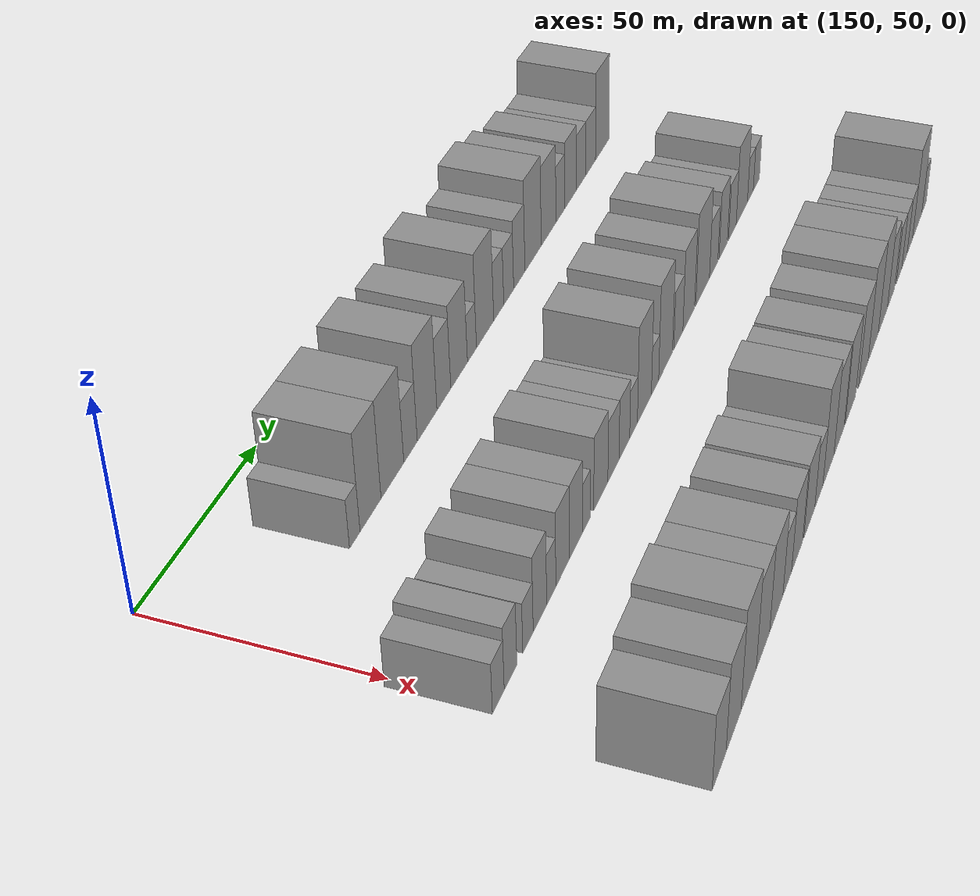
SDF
<sdf version="1.6">
 <world name="default">
  <model name="building_484">
   <static>1</static>
   <pose>170.0000 80.8045 0 0.000000 0.000000 0.000000</pose>
   <link name="link">
    <pose>0 0 6.00 0 0 0</pose>
    <collision name="collision"><geometry><box><size>20.0000 4.8670 12.0000</size></box></geometry></collision>
    <visual name="visual">
     <cast_shadows>0</cast_shadows>
     <geometry><box><size>20.0000 4.8670 12.0000</size></box></geometry>
     <material>
      <script>
       <uri>model://grey_wall/materials/scripts</uri>
       <uri>model://grey_wall/materials/textures</uri>
       <name>vrc/grey_wall</name>
      </script>
     </material>
    </visual>
   </link>
  </model>
  <model name="building_485">
   <static>1</static>
   <pose>170.0000 88.2387 0 0.000000 0.000000 0.000000</pose>
   <link name="link">
    <pose>0 0 12.00 0 0 0</pose>
    <collision name="collision"><geometry><box><size>20.0000 10.0013 24.0000</size></box></geometry></collision>
    <visual name="visual">
     <cast_shadows>0</cast_shadows>
     <geometry><box><size>20.0000 10.0013 24.0000</size></box></geometry>
     <material>
      <script>
       <uri>model://grey_wall/materials/scripts</uri>
       <uri>model://grey_wall/materials/textures</uri>
       <name>vrc/grey_wall</name>
      </script>
     </material>
    </visual>
   </link>
  </model>
  <model name="building_486">
   <static>1</static>
   <pose>170.0000 98.8931 0 0.000000 0.000000 0.000000</pose>
   <link name="link">
    <pose>0 0 12.00 0 0 0</pose>
    <collision name="collision"><geometry><box><size>20.0000 11.3076 24.0000</size></box></geometry></collision>
    <visual name="visual">
     <cast_shadows>0</cast_shadows>
     <geometry><box><size>20.0000 11.3076 24.0000</size></box></geometry>
     <material>
      <script>
       <uri>model://grey_wall/materials/scripts</uri>
       <uri>model://grey_wall/materials/textures</uri>
       <name>vrc/grey_wall</name>
      </script>
     </material>
    </visual>
   </link>
  </model>
  <model name="building_487">
   <static>1</static>
   <pose>170.0000 108.0232 0 0.000000 0.000000 0.000000</pose>
   <link name="link">
    <pose>0 0 7.50 0 0 0</pose>
    <collision name="collision"><geometry><box><size>20.0000 6.9526 15.0000</size></box></geometry></collision>
    <visual name="visual">
     <cast_shadows>0</cast_shadows>
     <geometry><box><size>20.0000 6.9526 15.0000</size></box></geometry>
     <material>
      <script>
       <uri>model://grey_wall/materials/scripts</uri>
       <uri>model://grey_wall/materials/textures</uri>
       <name>vrc/grey_wall</name>
      </script>
     </material>
    </visual>
   </link>
  </model>
  <model name="building_488">
   <static>1</static>
   <pose>170.0000 116.7342 0 0.000000 0.000000 0.000000</pose>
   <link name="link">
    <pose>0 0 12.00 0 0 0</pose>
    <collision name="collision"><geometry><box><size>20.0000 10.4694 24.0000</size></box></geometry></collision>
    <visual name="visual">
     <cast_shadows>0</cast_shadows>
     <geometry><box><size>20.0000 10.4694 24.0000</size></box></geometry>
     <material>
      <script>
       <uri>model://grey_wall/materials/scripts</uri>
       <uri>model://grey_wall/materials/textures</uri>
       <name>vrc/grey_wall</name>
      </script>
     </material>
    </visual>
   </link>
  </model>
  <model name="building_489">
   <static>1</static>
   <pose>170.0000 125.7995 0 0.000000 0.000000 0.000000</pose>
   <link name="link">
    <pose>0 0 9.00 0 0 0</pose>
    <collision name="collision"><geometry><box><size>20.0000 7.6612 18.0000</size></box></geometry></collision>
    <visual name="visual">
     <cast_shadows>0</cast_shadows>
     <geometry><box><size>20.0000 7.6612 18.0000</size></box></geometry>
     <material>
      <script>
       <uri>model://grey_wall/materials/scripts</uri>
       <uri>model://grey_wall/materials/textures</uri>
       <name>vrc/grey_wall</name>
      </script>
     </material>
    </visual>
   </link>
  </model>
  <model name="building_490">
   <static>1</static>
   <pose>170.0000 134.3663 0 0.000000 0.000000 0.000000</pose>
   <link name="link">
    <pose>0 0 10.50 0 0 0</pose>
    <collision name="collision"><geometry><box><size>20.0000 9.4724 21.0000</size></box></geometry></collision>
    <visual name="visual">
     <cast_shadows>0</cast_shadows>
     <geometry><box><size>20.0000 9.4724 21.0000</size></box></geometry>
     <material>
      <script>
       <uri>model://grey_wall/materials/scripts</uri>
       <uri>model://grey_wall/materials/textures</uri>
       <name>vrc/grey_wall</name>
      </script>
     </material>
    </visual>
   </link>
  </model>
  <model name="building_491">
   <static>1</static>
   <pose>170.0000 141.7454 0 0.000000 0.000000 0.000000</pose>
   <link name="link">
    <pose>0 0 6.00 0 0 0</pose>
    <collision name="collision"><geometry><box><size>20.0000 5.2858 12.0000</size></box></geometry></collision>
    <visual name="visual">
     <cast_shadows>0</cast_shadows>
     <geometry><box><size>20.0000 5.2858 12.0000</size></box></geometry>
     <material>
      <script>
       <uri>model://grey_wall/materials/scripts</uri>
       <uri>model://grey_wall/materials/textures</uri>
       <name>vrc/grey_wall</name>
      </script>
     </material>
    </visual>
   </link>
  </model>
  <model name="building_492">
   <static>1</static>
   <pose>170.0000 149.5778 0 0.000000 0.000000 0.000000</pose>
   <link name="link">
    <pose>0 0 12.00 0 0 0</pose>
    <collision name="collision"><geometry><box><size>20.0000 10.3790 24.0000</size></box></geometry></collision>
    <visual name="visual">
     <cast_shadows>0</cast_shadows>
     <geometry><box><size>20.0000 10.3790 24.0000</size></box></geometry>
     <material>
      <script>
       <uri>model://grey_wall/materials/scripts</uri>
       <uri>model://grey_wall/materials/textures</uri>
       <name>vrc/grey_wall</name>
      </script>
     </material>
    </visual>
   </link>
  </model>
  <model name="building_493">
   <static>1</static>
   <pose>170.0000 157.8700 0 0.000000 0.000000 0.000000</pose>
   <link name="link">
    <pose>0 0 7.50 0 0 0</pose>
    <collision name="collision"><geometry><box><size>20.0000 6.2055 15.0000</size></box></geometry></collision>
    <visual name="visual">
     <cast_shadows>0</cast_shadows>
     <geometry><box><size>20.0000 6.2055 15.0000</size></box></geometry>
     <material>
      <script>
       <uri>model://grey_wall/materials/scripts</uri>
       <uri>model://grey_wall/materials/textures</uri>
       <name>vrc/grey_wall</name>
      </script>
     </material>
    </visual>
   </link>
  </model>
  <model name="building_494">
   <static>1</static>
   <pose>170.0000 164.1206 0 0.000000 0.000000 0.000000</pose>
   <link name="link">
    <pose>0 0 7.50 0 0 0</pose>
    <collision name="collision"><geometry><box><size>20.0000 6.2956 15.0000</size></box></geometry></collision>
    <visual name="visual">
     <cast_shadows>0</cast_shadows>
     <geometry><box><size>20.0000 6.2956 15.0000</size></box></geometry>
     <material>
      <script>
       <uri>model://grey_wall/materials/scripts</uri>
       <uri>model://grey_wall/materials/textures</uri>
       <name>vrc/grey_wall</name>
      </script>
     </material>
    </visual>
   </link>
  </model>
  <model name="building_495">
   <static>1</static>
   <pose>170.0000 170.9346 0 0.000000 0.000000 0.000000</pose>
   <link name="link">
    <pose>0 0 9.00 0 0 0</pose>
    <collision name="collision"><geometry><box><size>20.0000 7.3326 18.0000</size></box></geometry></collision>
    <visual name="visual">
     <cast_shadows>0</cast_shadows>
     <geometry><box><size>20.0000 7.3326 18.0000</size></box></geometry>
     <material>
      <script>
       <uri>model://grey_wall/materials/scripts</uri>
       <uri>model://grey_wall/materials/textures</uri>
       <name>vrc/grey_wall</name>
      </script>
     </material>
    </visual>
   </link>
  </model>
  <model name="building_496">
   <static>1</static>
   <pose>170.0000 180.0778 0 0.000000 0.000000 0.000000</pose>
   <link name="link">
    <pose>0 0 12.00 0 0 0</pose>
    <collision name="collision"><geometry><box><size>20.0000 10.9537 24.0000</size></box></geometry></collision>
    <visual name="visual">
     <cast_shadows>0</cast_shadows>
     <geometry><box><size>20.0000 10.9537 24.0000</size></box></geometry>
     <material>
      <script>
       <uri>model://grey_wall/materials/scripts</uri>
       <uri>model://grey_wall/materials/textures</uri>
       <name>vrc/grey_wall</name>
      </script>
     </material>
    </visual>
   </link>
  </model>
  <model name="building_497">
   <static>1</static>
   <pose>170.0000 190.6676 0 0.000000 0.000000 0.000000</pose>
   <link name="link">
    <pose>0 0 10.50 0 0 0</pose>
    <collision name="collision"><geometry><box><size>20.0000 10.2257 21.0000</size></box></geometry></collision>
    <visual name="visual">
     <cast_shadows>0</cast_shadows>
     <geometry><box><size>20.0000 10.2257 21.0000</size></box></geometry>
     <material>
      <script>
       <uri>model://grey_wall/materials/scripts</uri>
       <uri>model://grey_wall/materials/textures</uri>
       <name>vrc/grey_wall</name>
      </script>
     </material>
    </visual>
   </link>
  </model>
  <model name="building_498">
   <static>1</static>
   <pose>170.0000 198.8834 0 0.000000 0.000000 0.000000</pose>
   <link name="link">
    <pose>0 0 7.50 0 0 0</pose>
    <collision name="collision"><geometry><box><size>20.0000 6.2059 15.0000</size></box></geometry></collision>
    <visual name="visual">
     <cast_shadows>0</cast_shadows>
     <geometry><box><size>20.0000 6.2059 15.0000</size></box></geometry>
     <material>
      <script>
       <uri>model://grey_wall/materials/scripts</uri>
       <uri>model://grey_wall/materials/textures</uri>
       <name>vrc/grey_wall</name>
      </script>
     </material>
    </visual>
   </link>
  </model>
  <model name="building_499">
   <static>1</static>
   <pose>170.0000 206.3096 0 0.000000 0.000000 0.000000</pose>
   <link name="link">
    <pose>0 0 9.00 0 0 0</pose>
    <collision name="collision"><geometry><box><size>20.0000 8.6467 18.0000</size></box></geometry></collision>
    <visual name="visual">
     <cast_shadows>0</cast_shadows>
     <geometry><box><size>20.0000 8.6467 18.0000</size></box></geometry>
     <material>
      <script>
       <uri>model://grey_wall/materials/scripts</uri>
       <uri>model://grey_wall/materials/textures</uri>
       <name>vrc/grey_wall</name>
      </script>
     </material>
    </visual>
   </link>
  </model>
  <model name="building_500">
   <static>1</static>
   <pose>170.0000 214.1640 0 0.000000 0.000000 0.000000</pose>
   <link name="link">
    <pose>0 0 7.50 0 0 0</pose>
    <collision name="collision"><geometry><box><size>20.0000 7.0620 15.0000</size></box></geometry></collision>
    <visual name="visual">
     <cast_shadows>0</cast_shadows>
     <geometry><box><size>20.0000 7.0620 15.0000</size></box></geometry>
     <material>
      <script>
       <uri>model://grey_wall/materials/scripts</uri>
       <uri>model://grey_wall/materials/textures</uri>
       <name>vrc/grey_wall</name>
      </script>
     </material>
    </visual>
   </link>
  </model>
  <model name="building_501">
   <static>1</static>
   <pose>170.0000 221.3366 0 0.000000 0.000000 0.000000</pose>
   <link name="link">
    <pose>0 0 7.50 0 0 0</pose>
    <collision name="collision"><geometry><box><size>20.0000 7.2833 15.0000</size></box></geometry></collision>
    <visual name="visual">
     <cast_shadows>0</cast_shadows>
     <geometry><box><size>20.0000 7.2833 15.0000</size></box></geometry>
     <material>
      <script>
       <uri>model://grey_wall/materials/scripts</uri>
       <uri>model://grey_wall/materials/textures</uri>
       <name>vrc/grey_wall</name>
      </script>
     </material>
    </visual>
   </link>
  </model>
  <model name="building_502">
   <static>1</static>
   <pose>170.0000 230.2449 0 0.000000 0.000000 0.000000</pose>
   <link name="link">
    <pose>0 0 12.00 0 0 0</pose>
    <collision name="collision"><geometry><box><size>20.0000 10.5332 24.0000</size></box></geometry></collision>
    <visual name="visual">
     <cast_shadows>0</cast_shadows>
     <geometry><box><size>20.0000 10.5332 24.0000</size></box></geometry>
     <material>
      <script>
       <uri>model://grey_wall/materials/scripts</uri>
       <uri>model://grey_wall/materials/textures</uri>
       <name>vrc/grey_wall</name>
      </script>
     </material>
    </visual>
   </link>
  </model>
  <model name="building_623">
   <static>1</static>
   <pose>210.0000 51.0926 0 0.000000 0.000000 0.000000</pose>
   <link name="link">
    <pose>0 0 6.00 0 0 0</pose>
    <collision name="collision"><geometry><box><size>20.0000 5.7637 12.0000</size></box></geometry></collision>
    <visual name="visual">
     <cast_shadows>0</cast_shadows>
     <geometry><box><size>20.0000 5.7637 12.0000</size></box></geometry>
     <material>
      <script>
       <uri>model://grey_wall/materials/scripts</uri>
       <uri>model://grey_wall/materials/textures</uri>
       <name>vrc/grey_wall</name>
      </script>
     </material>
    </visual>
   </link>
  </model>
  <model name="building_624">
   <static>1</static>
   <pose>210.0000 57.1625 0 0.000000 0.000000 0.000000</pose>
   <link name="link">
    <pose>0 0 7.50 0 0 0</pose>
    <collision name="collision"><geometry><box><size>20.0000 6.3761 15.0000</size></box></geometry></collision>
    <visual name="visual">
     <cast_shadows>0</cast_shadows>
     <geometry><box><size>20.0000 6.3761 15.0000</size></box></geometry>
     <material>
      <script>
       <uri>model://grey_wall/materials/scripts</uri>
       <uri>model://grey_wall/materials/textures</uri>
       <name>vrc/grey_wall</name>
      </script>
     </material>
    </visual>
   </link>
  </model>
  <model name="building_625">
   <static>1</static>
   <pose>210.0000 66.0645 0 0.000000 0.000000 0.000000</pose>
   <link name="link">
    <pose>0 0 6.00 0 0 0</pose>
    <collision name="collision"><geometry><box><size>20.0000 5.4278 12.0000</size></box></geometry></collision>
    <visual name="visual">
     <cast_shadows>0</cast_shadows>
     <geometry><box><size>20.0000 5.4278 12.0000</size></box></geometry>
     <material>
      <script>
       <uri>model://grey_wall/materials/scripts</uri>
       <uri>model://grey_wall/materials/textures</uri>
       <name>vrc/grey_wall</name>
      </script>
     </material>
    </visual>
   </link>
  </model>
  <model name="building_626">
   <static>1</static>
   <pose>210.0000 72.3871 0 0.000000 0.000000 0.000000</pose>
   <link name="link">
    <pose>0 0 9.00 0 0 0</pose>
    <collision name="collision"><geometry><box><size>20.0000 7.2173 18.0000</size></box></geometry></collision>
    <visual name="visual">
     <cast_shadows>0</cast_shadows>
     <geometry><box><size>20.0000 7.2173 18.0000</size></box></geometry>
     <material>
      <script>
       <uri>model://grey_wall/materials/scripts</uri>
       <uri>model://grey_wall/materials/textures</uri>
       <name>vrc/grey_wall</name>
      </script>
     </material>
    </visual>
   </link>
  </model>
  <model name="building_627">
   <static>1</static>
   <pose>210.0000 78.5351 0 0.000000 0.000000 0.000000</pose>
   <link name="link">
    <pose>0 0 6.00 0 0 0</pose>
    <collision name="collision"><geometry><box><size>20.0000 5.0787 12.0000</size></box></geometry></collision>
    <visual name="visual">
     <cast_shadows>0</cast_shadows>
     <geometry><box><size>20.0000 5.0787 12.0000</size></box></geometry>
     <material>
      <script>
       <uri>model://grey_wall/materials/scripts</uri>
       <uri>model://grey_wall/materials/textures</uri>
       <name>vrc/grey_wall</name>
      </script>
     </material>
    </visual>
   </link>
  </model>
  <model name="building_628">
   <static>1</static>
   <pose>210.0000 84.8996 0 0.000000 0.000000 0.000000</pose>
   <link name="link">
    <pose>0 0 9.00 0 0 0</pose>
    <collision name="collision"><geometry><box><size>20.0000 7.6502 18.0000</size></box></geometry></collision>
    <visual name="visual">
     <cast_shadows>0</cast_shadows>
     <geometry><box><size>20.0000 7.6502 18.0000</size></box></geometry>
     <material>
      <script>
       <uri>model://grey_wall/materials/scripts</uri>
       <uri>model://grey_wall/materials/textures</uri>
       <name>vrc/grey_wall</name>
      </script>
     </material>
    </visual>
   </link>
  </model>
  <model name="building_629">
   <static>1</static>
   <pose>210.0000 92.4815 0 0.000000 0.000000 0.000000</pose>
   <link name="link">
    <pose>0 0 9.00 0 0 0</pose>
    <collision name="collision"><geometry><box><size>20.0000 7.5138 18.0000</size></box></geometry></collision>
    <visual name="visual">
     <cast_shadows>0</cast_shadows>
     <geometry><box><size>20.0000 7.5138 18.0000</size></box></geometry>
     <material>
      <script>
       <uri>model://grey_wall/materials/scripts</uri>
       <uri>model://grey_wall/materials/textures</uri>
       <name>vrc/grey_wall</name>
      </script>
     </material>
    </visual>
   </link>
  </model>
  <model name="building_630">
   <static>1</static>
   <pose>210.0000 98.6541 0 0.000000 0.000000 0.000000</pose>
   <link name="link">
    <pose>0 0 6.00 0 0 0</pose>
    <collision name="collision"><geometry><box><size>20.0000 4.8314 12.0000</size></box></geometry></collision>
    <visual name="visual">
     <cast_shadows>0</cast_shadows>
     <geometry><box><size>20.0000 4.8314 12.0000</size></box></geometry>
     <material>
      <script>
       <uri>model://grey_wall/materials/scripts</uri>
       <uri>model://grey_wall/materials/textures</uri>
       <name>vrc/grey_wall</name>
      </script>
     </material>
    </visual>
   </link>
  </model>
  <model name="building_631">
   <static>1</static>
   <pose>210.0000 107.4378 0 0.000000 0.000000 0.000000</pose>
   <link name="link">
    <pose>0 0 9.00 0 0 0</pose>
    <collision name="collision"><geometry><box><size>20.0000 8.7358 18.0000</size></box></geometry></collision>
    <visual name="visual">
     <cast_shadows>0</cast_shadows>
     <geometry><box><size>20.0000 8.7358 18.0000</size></box></geometry>
     <material>
      <script>
       <uri>model://grey_wall/materials/scripts</uri>
       <uri>model://grey_wall/materials/textures</uri>
       <name>vrc/grey_wall</name>
      </script>
     </material>
    </visual>
   </link>
  </model>
  <model name="building_632">
   <static>1</static>
   <pose>210.0000 115.3934 0 0.000000 0.000000 0.000000</pose>
   <link name="link">
    <pose>0 0 7.50 0 0 0</pose>
    <collision name="collision"><geometry><box><size>20.0000 7.1755 15.0000</size></box></geometry></collision>
    <visual name="visual">
     <cast_shadows>0</cast_shadows>
     <geometry><box><size>20.0000 7.1755 15.0000</size></box></geometry>
     <material>
      <script>
       <uri>model://grey_wall/materials/scripts</uri>
       <uri>model://grey_wall/materials/textures</uri>
       <name>vrc/grey_wall</name>
      </script>
     </material>
    </visual>
   </link>
  </model>
  <model name="building_633">
   <static>1</static>
   <pose>210.0000 122.4685 0 0.000000 0.000000 0.000000</pose>
   <link name="link">
    <pose>0 0 7.50 0 0 0</pose>
    <collision name="collision"><geometry><box><size>20.0000 6.9748 15.0000</size></box></geometry></collision>
    <visual name="visual">
     <cast_shadows>0</cast_shadows>
     <geometry><box><size>20.0000 6.9748 15.0000</size></box></geometry>
     <material>
      <script>
       <uri>model://grey_wall/materials/scripts</uri>
       <uri>model://grey_wall/materials/textures</uri>
       <name>vrc/grey_wall</name>
      </script>
     </material>
    </visual>
   </link>
  </model>
  <model name="building_634">
   <static>1</static>
   <pose>210.0000 128.5463 0 0.000000 0.000000 0.000000</pose>
   <link name="link">
    <pose>0 0 6.00 0 0 0</pose>
    <collision name="collision"><geometry><box><size>20.0000 5.1807 12.0000</size></box></geometry></collision>
    <visual name="visual">
     <cast_shadows>0</cast_shadows>
     <geometry><box><size>20.0000 5.1807 12.0000</size></box></geometry>
     <material>
      <script>
       <uri>model://grey_wall/materials/scripts</uri>
       <uri>model://grey_wall/materials/textures</uri>
       <name>vrc/grey_wall</name>
      </script>
     </material>
    </visual>
   </link>
  </model>
  <model name="building_635">
   <static>1</static>
   <pose>210.0000 135.9845 0 0.000000 0.000000 0.000000</pose>
   <link name="link">
    <pose>0 0 12.00 0 0 0</pose>
    <collision name="collision"><geometry><box><size>20.0000 9.6956 24.0000</size></box></geometry></collision>
    <visual name="visual">
     <cast_shadows>0</cast_shadows>
     <geometry><box><size>20.0000 9.6956 24.0000</size></box></geometry>
     <material>
      <script>
       <uri>model://grey_wall/materials/scripts</uri>
       <uri>model://grey_wall/materials/textures</uri>
       <name>vrc/grey_wall</name>
      </script>
     </material>
    </visual>
   </link>
  </model>
  <model name="building_636">
   <static>1</static>
   <pose>210.0000 143.4125 0 0.000000 0.000000 0.000000</pose>
   <link name="link">
    <pose>0 0 6.00 0 0 0</pose>
    <collision name="collision"><geometry><box><size>20.0000 5.1604 12.0000</size></box></geometry></collision>
    <visual name="visual">
     <cast_shadows>0</cast_shadows>
     <geometry><box><size>20.0000 5.1604 12.0000</size></box></geometry>
     <material>
      <script>
       <uri>model://grey_wall/materials/scripts</uri>
       <uri>model://grey_wall/materials/textures</uri>
       <name>vrc/grey_wall</name>
      </script>
     </material>
    </visual>
   </link>
  </model>
  <model name="building_637">
   <static>1</static>
   <pose>210.0000 151.0412 0 0.000000 0.000000 0.000000</pose>
   <link name="link">
    <pose>0 0 12.00 0 0 0</pose>
    <collision name="collision"><geometry><box><size>20.0000 10.0972 24.0000</size></box></geometry></collision>
    <visual name="visual">
     <cast_shadows>0</cast_shadows>
     <geometry><box><size>20.0000 10.0972 24.0000</size></box></geometry>
     <material>
      <script>
       <uri>model://grey_wall/materials/scripts</uri>
       <uri>model://grey_wall/materials/textures</uri>
       <name>vrc/grey_wall</name>
      </script>
     </material>
    </visual>
   </link>
  </model>
  <model name="building_638">
   <static>1</static>
   <pose>210.0000 160.5370 0 0.000000 0.000000 0.000000</pose>
   <link name="link">
    <pose>0 0 7.50 0 0 0</pose>
    <collision name="collision"><geometry><box><size>20.0000 6.8943 15.0000</size></box></geometry></collision>
    <visual name="visual">
     <cast_shadows>0</cast_shadows>
     <geometry><box><size>20.0000 6.8943 15.0000</size></box></geometry>
     <material>
      <script>
       <uri>model://grey_wall/materials/scripts</uri>
       <uri>model://grey_wall/materials/textures</uri>
       <name>vrc/grey_wall</name>
      </script>
     </material>
    </visual>
   </link>
  </model>
  <model name="building_639">
   <static>1</static>
   <pose>210.0000 168.5193 0 0.000000 0.000000 0.000000</pose>
   <link name="link">
    <pose>0 0 10.50 0 0 0</pose>
    <collision name="collision"><geometry><box><size>20.0000 9.0704 21.0000</size></box></geometry></collision>
    <visual name="visual">
     <cast_shadows>0</cast_shadows>
     <geometry><box><size>20.0000 9.0704 21.0000</size></box></geometry>
     <material>
      <script>
       <uri>model://grey_wall/materials/scripts</uri>
       <uri>model://grey_wall/materials/textures</uri>
       <name>vrc/grey_wall</name>
      </script>
     </material>
    </visual>
   </link>
  </model>
  <model name="building_640">
   <static>1</static>
   <pose>210.0000 179.5872 0 0.000000 0.000000 0.000000</pose>
   <link name="link">
    <pose>0 0 12.00 0 0 0</pose>
    <collision name="collision"><geometry><box><size>20.0000 11.0653 24.0000</size></box></geometry></collision>
    <visual name="visual">
     <cast_shadows>0</cast_shadows>
     <geometry><box><size>20.0000 11.0653 24.0000</size></box></geometry>
     <material>
      <script>
       <uri>model://grey_wall/materials/scripts</uri>
       <uri>model://grey_wall/materials/textures</uri>
       <name>vrc/grey_wall</name>
      </script>
     </material>
    </visual>
   </link>
  </model>
  <model name="building_641">
   <static>1</static>
   <pose>210.0000 188.6377 0 0.000000 0.000000 0.000000</pose>
   <link name="link">
    <pose>0 0 7.50 0 0 0</pose>
    <collision name="collision"><geometry><box><size>20.0000 7.0358 15.0000</size></box></geometry></collision>
    <visual name="visual">
     <cast_shadows>0</cast_shadows>
     <geometry><box><size>20.0000 7.0358 15.0000</size></box></geometry>
     <material>
      <script>
       <uri>model://grey_wall/materials/scripts</uri>
       <uri>model://grey_wall/materials/textures</uri>
       <name>vrc/grey_wall</name>
      </script>
     </material>
    </visual>
   </link>
  </model>
  <model name="building_642">
   <static>1</static>
   <pose>210.0000 196.7728 0 0.000000 0.000000 0.000000</pose>
   <link name="link">
    <pose>0 0 9.00 0 0 0</pose>
    <collision name="collision"><geometry><box><size>20.0000 7.2344 18.0000</size></box></geometry></collision>
    <visual name="visual">
     <cast_shadows>0</cast_shadows>
     <geometry><box><size>20.0000 7.2344 18.0000</size></box></geometry>
     <material>
      <script>
       <uri>model://grey_wall/materials/scripts</uri>
       <uri>model://grey_wall/materials/textures</uri>
       <name>vrc/grey_wall</name>
      </script>
     </material>
    </visual>
   </link>
  </model>
  <model name="building_643">
   <static>1</static>
   <pose>210.0000 204.7605 0 0.000000 0.000000 0.000000</pose>
   <link name="link">
    <pose>0 0 7.50 0 0 0</pose>
    <collision name="collision"><geometry><box><size>20.0000 6.7410 15.0000</size></box></geometry></collision>
    <visual name="visual">
     <cast_shadows>0</cast_shadows>
     <geometry><box><size>20.0000 6.7410 15.0000</size></box></geometry>
     <material>
      <script>
       <uri>model://grey_wall/materials/scripts</uri>
       <uri>model://grey_wall/materials/textures</uri>
       <name>vrc/grey_wall</name>
      </script>
     </material>
    </visual>
   </link>
  </model>
  <model name="building_644">
   <static>1</static>
   <pose>210.0000 213.2442 0 0.000000 0.000000 0.000000</pose>
   <link name="link">
    <pose>0 0 10.50 0 0 0</pose>
    <collision name="collision"><geometry><box><size>20.0000 10.2264 21.0000</size></box></geometry></collision>
    <visual name="visual">
     <cast_shadows>0</cast_shadows>
     <geometry><box><size>20.0000 10.2264 21.0000</size></box></geometry>
     <material>
      <script>
       <uri>model://grey_wall/materials/scripts</uri>
       <uri>model://grey_wall/materials/textures</uri>
       <name>vrc/grey_wall</name>
      </script>
     </material>
    </visual>
   </link>
  </model>
  <model name="building_645">
   <static>1</static>
   <pose>210.0000 221.1032 0 0.000000 0.000000 0.000000</pose>
   <link name="link">
    <pose>0 0 6.00 0 0 0</pose>
    <collision name="collision"><geometry><box><size>20.0000 5.4916 12.0000</size></box></geometry></collision>
    <visual name="visual">
     <cast_shadows>0</cast_shadows>
     <geometry><box><size>20.0000 5.4916 12.0000</size></box></geometry>
     <material>
      <script>
       <uri>model://grey_wall/materials/scripts</uri>
       <uri>model://grey_wall/materials/textures</uri>
       <name>vrc/grey_wall</name>
      </script>
     </material>
    </visual>
   </link>
  </model>
  <model name="building_646">
   <static>1</static>
   <pose>210.0000 226.7561 0 0.000000 0.000000 0.000000</pose>
   <link name="link">
    <pose>0 0 6.00 0 0 0</pose>
    <collision name="collision"><geometry><box><size>20.0000 5.8141 12.0000</size></box></geometry></collision>
    <visual name="visual">
     <cast_shadows>0</cast_shadows>
     <geometry><box><size>20.0000 5.8141 12.0000</size></box></geometry>
     <material>
      <script>
       <uri>model://grey_wall/materials/scripts</uri>
       <uri>model://grey_wall/materials/textures</uri>
       <name>vrc/grey_wall</name>
      </script>
     </material>
    </visual>
   </link>
  </model>
  <model name="building_762">
   <static>1</static>
   <pose>250.0000 48.2984 0 0.000000 0.000000 0.000000</pose>
   <link name="link">
    <pose>0 0 9.00 0 0 0</pose>
    <collision name="collision"><geometry><box><size>20.0000 8.6132 18.0000</size></box></geometry></collision>
    <visual name="visual">
     <cast_shadows>0</cast_shadows>
     <geometry><box><size>20.0000 8.6132 18.0000</size></box></geometry>
     <material>
      <script>
       <uri>model://grey_wall/materials/scripts</uri>
       <uri>model://grey_wall/materials/textures</uri>
       <name>vrc/grey_wall</name>
      </script>
     </material>
    </visual>
   </link>
  </model>
  <model name="building_763">
   <static>1</static>
   <pose>250.0000 57.4235 0 0.000000 0.000000 0.000000</pose>
   <link name="link">
    <pose>0 0 10.50 0 0 0</pose>
    <collision name="collision"><geometry><box><size>20.0000 9.6371 21.0000</size></box></geometry></collision>
    <visual name="visual">
     <cast_shadows>0</cast_shadows>
     <geometry><box><size>20.0000 9.6371 21.0000</size></box></geometry>
     <material>
      <script>
       <uri>model://grey_wall/materials/scripts</uri>
       <uri>model://grey_wall/materials/textures</uri>
       <name>vrc/grey_wall</name>
      </script>
     </material>
    </visual>
   </link>
  </model>
  <model name="building_764">
   <static>1</static>
   <pose>250.0000 67.4311 0 0.000000 0.000000 0.000000</pose>
   <link name="link">
    <pose>0 0 12.00 0 0 0</pose>
    <collision name="collision"><geometry><box><size>20.0000 10.3780 24.0000</size></box></geometry></collision>
    <visual name="visual">
     <cast_shadows>0</cast_shadows>
     <geometry><box><size>20.0000 10.3780 24.0000</size></box></geometry>
     <material>
      <script>
       <uri>model://grey_wall/materials/scripts</uri>
       <uri>model://grey_wall/materials/textures</uri>
       <name>vrc/grey_wall</name>
      </script>
     </material>
    </visual>
   </link>
  </model>
  <model name="building_765">
   <static>1</static>
   <pose>250.0000 77.3410 0 0.000000 0.000000 0.000000</pose>
   <link name="link">
    <pose>0 0 10.50 0 0 0</pose>
    <collision name="collision"><geometry><box><size>20.0000 9.4418 21.0000</size></box></geometry></collision>
    <visual name="visual">
     <cast_shadows>0</cast_shadows>
     <geometry><box><size>20.0000 9.4418 21.0000</size></box></geometry>
     <material>
      <script>
       <uri>model://grey_wall/materials/scripts</uri>
       <uri>model://grey_wall/materials/textures</uri>
       <name>vrc/grey_wall</name>
      </script>
     </material>
    </visual>
   </link>
  </model>
  <model name="building_766">
   <static>1</static>
   <pose>250.0000 86.9565 0 0.000000 0.000000 0.000000</pose>
   <link name="link">
    <pose>0 0 10.50 0 0 0</pose>
    <collision name="collision"><geometry><box><size>20.0000 9.7894 21.0000</size></box></geometry></collision>
    <visual name="visual">
     <cast_shadows>0</cast_shadows>
     <geometry><box><size>20.0000 9.7894 21.0000</size></box></geometry>
     <material>
      <script>
       <uri>model://grey_wall/materials/scripts</uri>
       <uri>model://grey_wall/materials/textures</uri>
       <name>vrc/grey_wall</name>
      </script>
     </material>
    </visual>
   </link>
  </model>
  <model name="building_767">
   <static>1</static>
   <pose>250.0000 95.1389 0 0.000000 0.000000 0.000000</pose>
   <link name="link">
    <pose>0 0 7.50 0 0 0</pose>
    <collision name="collision"><geometry><box><size>20.0000 6.5754 15.0000</size></box></geometry></collision>
    <visual name="visual">
     <cast_shadows>0</cast_shadows>
     <geometry><box><size>20.0000 6.5754 15.0000</size></box></geometry>
     <material>
      <script>
       <uri>model://grey_wall/materials/scripts</uri>
       <uri>model://grey_wall/materials/textures</uri>
       <name>vrc/grey_wall</name>
      </script>
     </material>
    </visual>
   </link>
  </model>
  <model name="building_768">
   <static>1</static>
   <pose>250.0000 102.8037 0 0.000000 0.000000 0.000000</pose>
   <link name="link">
    <pose>0 0 9.00 0 0 0</pose>
    <collision name="collision"><geometry><box><size>20.0000 8.7540 18.0000</size></box></geometry></collision>
    <visual name="visual">
     <cast_shadows>0</cast_shadows>
     <geometry><box><size>20.0000 8.7540 18.0000</size></box></geometry>
     <material>
      <script>
       <uri>model://grey_wall/materials/scripts</uri>
       <uri>model://grey_wall/materials/textures</uri>
       <name>vrc/grey_wall</name>
      </script>
     </material>
    </visual>
   </link>
  </model>
  <model name="building_769">
   <static>1</static>
   <pose>250.0000 112.6623 0 0.000000 0.000000 0.000000</pose>
   <link name="link">
    <pose>0 0 9.00 0 0 0</pose>
    <collision name="collision"><geometry><box><size>20.0000 8.9631 18.0000</size></box></geometry></collision>
    <visual name="visual">
     <cast_shadows>0</cast_shadows>
     <geometry><box><size>20.0000 8.9631 18.0000</size></box></geometry>
     <material>
      <script>
       <uri>model://grey_wall/materials/scripts</uri>
       <uri>model://grey_wall/materials/textures</uri>
       <name>vrc/grey_wall</name>
      </script>
     </material>
    </visual>
   </link>
  </model>
  <model name="building_770">
   <static>1</static>
   <pose>250.0000 120.5738 0 0.000000 0.000000 0.000000</pose>
   <link name="link">
    <pose>0 0 7.50 0 0 0</pose>
    <collision name="collision"><geometry><box><size>20.0000 6.8600 15.0000</size></box></geometry></collision>
    <visual name="visual">
     <cast_shadows>0</cast_shadows>
     <geometry><box><size>20.0000 6.8600 15.0000</size></box></geometry>
     <material>
      <script>
       <uri>model://grey_wall/materials/scripts</uri>
       <uri>model://grey_wall/materials/textures</uri>
       <name>vrc/grey_wall</name>
      </script>
     </material>
    </visual>
   </link>
  </model>
  <model name="building_771">
   <static>1</static>
   <pose>250.0000 128.8526 0 0.000000 0.000000 0.000000</pose>
   <link name="link">
    <pose>0 0 12.00 0 0 0</pose>
    <collision name="collision"><geometry><box><size>20.0000 9.6976 24.0000</size></box></geometry></collision>
    <visual name="visual">
     <cast_shadows>0</cast_shadows>
     <geometry><box><size>20.0000 9.6976 24.0000</size></box></geometry>
     <material>
      <script>
       <uri>model://grey_wall/materials/scripts</uri>
       <uri>model://grey_wall/materials/textures</uri>
       <name>vrc/grey_wall</name>
      </script>
     </material>
    </visual>
   </link>
  </model>
  <model name="building_772">
   <static>1</static>
   <pose>250.0000 138.3419 0 0.000000 0.000000 0.000000</pose>
   <link name="link">
    <pose>0 0 10.50 0 0 0</pose>
    <collision name="collision"><geometry><box><size>20.0000 9.2811 21.0000</size></box></geometry></collision>
    <visual name="visual">
     <cast_shadows>0</cast_shadows>
     <geometry><box><size>20.0000 9.2811 21.0000</size></box></geometry>
     <material>
      <script>
       <uri>model://grey_wall/materials/scripts</uri>
       <uri>model://grey_wall/materials/textures</uri>
       <name>vrc/grey_wall</name>
      </script>
     </material>
    </visual>
   </link>
  </model>
  <model name="building_773">
   <static>1</static>
   <pose>250.0000 148.8646 0 0.000000 0.000000 0.000000</pose>
   <link name="link">
    <pose>0 0 10.50 0 0 0</pose>
    <collision name="collision"><geometry><box><size>20.0000 9.7642 21.0000</size></box></geometry></collision>
    <visual name="visual">
     <cast_shadows>0</cast_shadows>
     <geometry><box><size>20.0000 9.7642 21.0000</size></box></geometry>
     <material>
      <script>
       <uri>model://grey_wall/materials/scripts</uri>
       <uri>model://grey_wall/materials/textures</uri>
       <name>vrc/grey_wall</name>
      </script>
     </material>
    </visual>
   </link>
  </model>
  <model name="building_774">
   <static>1</static>
   <pose>250.0000 161.4831 0 0.000000 0.000000 0.000000</pose>
   <link name="link">
    <pose>0 0 10.50 0 0 0</pose>
    <collision name="collision"><geometry><box><size>20.0000 9.4729 21.0000</size></box></geometry></collision>
    <visual name="visual">
     <cast_shadows>0</cast_shadows>
     <geometry><box><size>20.0000 9.4729 21.0000</size></box></geometry>
     <material>
      <script>
       <uri>model://grey_wall/materials/scripts</uri>
       <uri>model://grey_wall/materials/textures</uri>
       <name>vrc/grey_wall</name>
      </script>
     </material>
    </visual>
   </link>
  </model>
  <model name="building_775">
   <static>1</static>
   <pose>250.0000 171.4436 0 0.000000 0.000000 0.000000</pose>
   <link name="link">
    <pose>0 0 12.00 0 0 0</pose>
    <collision name="collision"><geometry><box><size>20.0000 10.4481 24.0000</size></box></geometry></collision>
    <visual name="visual">
     <cast_shadows>0</cast_shadows>
     <geometry><box><size>20.0000 10.4481 24.0000</size></box></geometry>
     <material>
      <script>
       <uri>model://grey_wall/materials/scripts</uri>
       <uri>model://grey_wall/materials/textures</uri>
       <name>vrc/grey_wall</name>
      </script>
     </material>
    </visual>
   </link>
  </model>
  <model name="building_776">
   <static>1</static>
   <pose>250.0000 181.5349 0 0.000000 0.000000 0.000000</pose>
   <link name="link">
    <pose>0 0 12.00 0 0 0</pose>
    <collision name="collision"><geometry><box><size>20.0000 9.7345 24.0000</size></box></geometry></collision>
    <visual name="visual">
     <cast_shadows>0</cast_shadows>
     <geometry><box><size>20.0000 9.7345 24.0000</size></box></geometry>
     <material>
      <script>
       <uri>model://grey_wall/materials/scripts</uri>
       <uri>model://grey_wall/materials/textures</uri>
       <name>vrc/grey_wall</name>
      </script>
     </material>
    </visual>
   </link>
  </model>
  <model name="building_777">
   <static>1</static>
   <pose>250.0000 190.4025 0 0.000000 0.000000 0.000000</pose>
   <link name="link">
    <pose>0 0 9.00 0 0 0</pose>
    <collision name="collision"><geometry><box><size>20.0000 8.0008 18.0000</size></box></geometry></collision>
    <visual name="visual">
     <cast_shadows>0</cast_shadows>
     <geometry><box><size>20.0000 8.0008 18.0000</size></box></geometry>
     <material>
      <script>
       <uri>model://grey_wall/materials/scripts</uri>
       <uri>model://grey_wall/materials/textures</uri>
       <name>vrc/grey_wall</name>
      </script>
     </material>
    </visual>
   </link>
  </model>
  <model name="building_778">
   <static>1</static>
   <pose>250.0000 199.4599 0 0.000000 0.000000 0.000000</pose>
   <link name="link">
    <pose>0 0 7.50 0 0 0</pose>
    <collision name="collision"><geometry><box><size>20.0000 6.1140 15.0000</size></box></geometry></collision>
    <visual name="visual">
     <cast_shadows>0</cast_shadows>
     <geometry><box><size>20.0000 6.1140 15.0000</size></box></geometry>
     <material>
      <script>
       <uri>model://grey_wall/materials/scripts</uri>
       <uri>model://grey_wall/materials/textures</uri>
       <name>vrc/grey_wall</name>
      </script>
     </material>
    </visual>
   </link>
  </model>
  <model name="building_779">
   <static>1</static>
   <pose>250.0000 205.5616 0 0.000000 0.000000 0.000000</pose>
   <link name="link">
    <pose>0 0 7.50 0 0 0</pose>
    <collision name="collision"><geometry><box><size>20.0000 6.0894 15.0000</size></box></geometry></collision>
    <visual name="visual">
     <cast_shadows>0</cast_shadows>
     <geometry><box><size>20.0000 6.0894 15.0000</size></box></geometry>
     <material>
      <script>
       <uri>model://grey_wall/materials/scripts</uri>
       <uri>model://grey_wall/materials/textures</uri>
       <name>vrc/grey_wall</name>
      </script>
     </material>
    </visual>
   </link>
  </model>
  <model name="building_780">
   <static>1</static>
   <pose>250.0000 211.8039 0 0.000000 0.000000 0.000000</pose>
   <link name="link">
    <pose>0 0 7.50 0 0 0</pose>
    <collision name="collision"><geometry><box><size>20.0000 6.3951 15.0000</size></box></geometry></collision>
    <visual name="visual">
     <cast_shadows>0</cast_shadows>
     <geometry><box><size>20.0000 6.3951 15.0000</size></box></geometry>
     <material>
      <script>
       <uri>model://grey_wall/materials/scripts</uri>
       <uri>model://grey_wall/materials/textures</uri>
       <name>vrc/grey_wall</name>
      </script>
     </material>
    </visual>
   </link>
  </model>
  <model name="building_781">
   <static>1</static>
   <pose>250.0000 220.7415 0 0.000000 0.000000 0.000000</pose>
   <link name="link">
    <pose>0 0 12.00 0 0 0</pose>
    <collision name="collision"><geometry><box><size>20.0000 11.4802 24.0000</size></box></geometry></collision>
    <visual name="visual">
     <cast_shadows>0</cast_shadows>
     <geometry><box><size>20.0000 11.4802 24.0000</size></box></geometry>
     <material>
      <script>
       <uri>model://grey_wall/materials/scripts</uri>
       <uri>model://grey_wall/materials/textures</uri>
       <name>vrc/grey_wall</name>
      </script>
     </material>
    </visual>
   </link>
  </model>
  <model name="building_782">
   <static>1</static>
   <pose>250.0000 229.3275 0 0.000000 0.000000 0.000000</pose>
   <link name="link">
    <pose>0 0 6.00 0 0 0</pose>
    <collision name="collision"><geometry><box><size>20.0000 5.6918 12.0000</size></box></geometry></collision>
    <visual name="visual">
     <cast_shadows>0</cast_shadows>
     <geometry><box><size>20.0000 5.6918 12.0000</size></box></geometry>
     <material>
      <script>
       <uri>model://grey_wall/materials/scripts</uri>
       <uri>model://grey_wall/materials/textures</uri>
       <name>vrc/grey_wall</name>
      </script>
     </material>
    </visual>
   </link>
  </model>
 </world>
</sdf>
